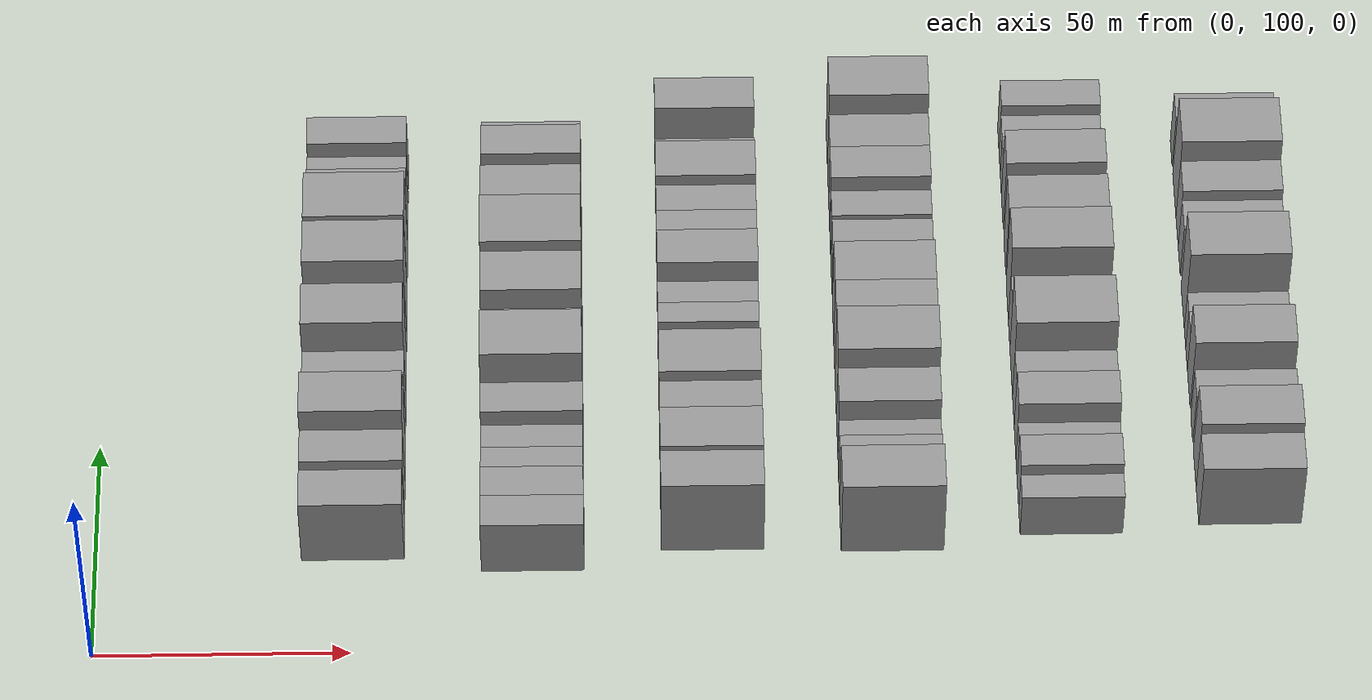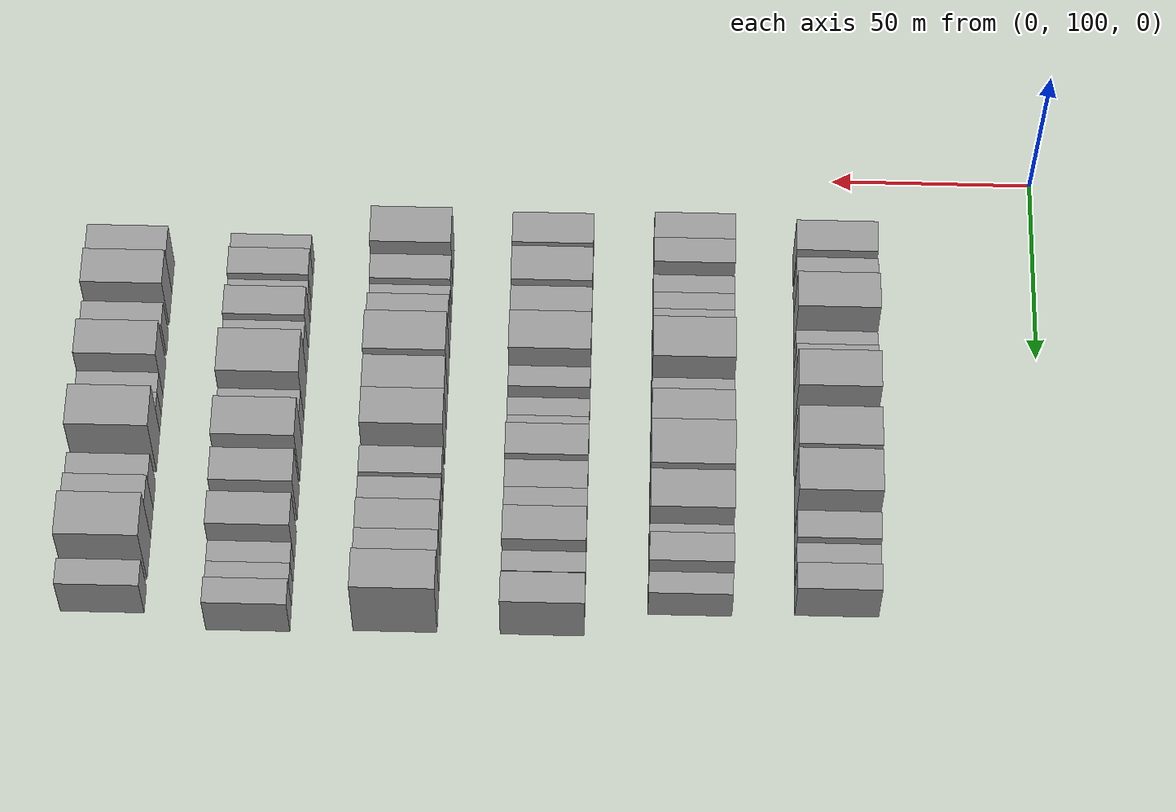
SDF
<sdf version="1.6">
 <world name="default">
  <model name="building_75">
   <static>1</static>
   <pose>50.0000 126.4468 0 0.000000 0.000000 0.000000</pose>
   <link name="link">
    <pose>0 0 9.00 0 0 0</pose>
    <collision name="collision"><geometry><box><size>20.0000 8.5566 18.0000</size></box></geometry></collision>
    <visual name="visual">
     <cast_shadows>0</cast_shadows>
     <geometry><box><size>20.0000 8.5566 18.0000</size></box></geometry>
     <material>
      <script>
       <uri>model://grey_wall/materials/scripts</uri>
       <uri>model://grey_wall/materials/textures</uri>
       <name>vrc/grey_wall</name>
      </script>
     </material>
    </visual>
   </link>
  </model>
  <model name="building_76">
   <static>1</static>
   <pose>50.0000 136.5192 0 0.000000 0.000000 0.000000</pose>
   <link name="link">
    <pose>0 0 9.00 0 0 0</pose>
    <collision name="collision"><geometry><box><size>20.0000 7.5880 18.0000</size></box></geometry></collision>
    <visual name="visual">
     <cast_shadows>0</cast_shadows>
     <geometry><box><size>20.0000 7.5880 18.0000</size></box></geometry>
     <material>
      <script>
       <uri>model://grey_wall/materials/scripts</uri>
       <uri>model://grey_wall/materials/textures</uri>
       <name>vrc/grey_wall</name>
      </script>
     </material>
    </visual>
   </link>
  </model>
  <model name="building_77">
   <static>1</static>
   <pose>50.0000 145.1539 0 0.000000 0.000000 0.000000</pose>
   <link name="link">
    <pose>0 0 12.00 0 0 0</pose>
    <collision name="collision"><geometry><box><size>20.0000 9.6815 24.0000</size></box></geometry></collision>
    <visual name="visual">
     <cast_shadows>0</cast_shadows>
     <geometry><box><size>20.0000 9.6815 24.0000</size></box></geometry>
     <material>
      <script>
       <uri>model://grey_wall/materials/scripts</uri>
       <uri>model://grey_wall/materials/textures</uri>
       <name>vrc/grey_wall</name>
      </script>
     </material>
    </visual>
   </link>
  </model>
  <model name="building_78">
   <static>1</static>
   <pose>50.0000 152.7154 0 0.000000 0.000000 0.000000</pose>
   <link name="link">
    <pose>0 0 6.00 0 0 0</pose>
    <collision name="collision"><geometry><box><size>20.0000 5.4415 12.0000</size></box></geometry></collision>
    <visual name="visual">
     <cast_shadows>0</cast_shadows>
     <geometry><box><size>20.0000 5.4415 12.0000</size></box></geometry>
     <material>
      <script>
       <uri>model://grey_wall/materials/scripts</uri>
       <uri>model://grey_wall/materials/textures</uri>
       <name>vrc/grey_wall</name>
      </script>
     </material>
    </visual>
   </link>
  </model>
  <model name="building_79">
   <static>1</static>
   <pose>50.0000 158.6669 0 0.000000 0.000000 0.000000</pose>
   <link name="link">
    <pose>0 0 7.50 0 0 0</pose>
    <collision name="collision"><geometry><box><size>20.0000 6.4617 15.0000</size></box></geometry></collision>
    <visual name="visual">
     <cast_shadows>0</cast_shadows>
     <geometry><box><size>20.0000 6.4617 15.0000</size></box></geometry>
     <material>
      <script>
       <uri>model://grey_wall/materials/scripts</uri>
       <uri>model://grey_wall/materials/textures</uri>
       <name>vrc/grey_wall</name>
      </script>
     </material>
    </visual>
   </link>
  </model>
  <model name="building_80">
   <static>1</static>
   <pose>50.0000 166.8273 0 0.000000 0.000000 0.000000</pose>
   <link name="link">
    <pose>0 0 12.00 0 0 0</pose>
    <collision name="collision"><geometry><box><size>20.0000 9.8591 24.0000</size></box></geometry></collision>
    <visual name="visual">
     <cast_shadows>0</cast_shadows>
     <geometry><box><size>20.0000 9.8591 24.0000</size></box></geometry>
     <material>
      <script>
       <uri>model://grey_wall/materials/scripts</uri>
       <uri>model://grey_wall/materials/textures</uri>
       <name>vrc/grey_wall</name>
      </script>
     </material>
    </visual>
   </link>
  </model>
  <model name="building_81">
   <static>1</static>
   <pose>50.0000 174.5070 0 0.000000 0.000000 0.000000</pose>
   <link name="link">
    <pose>0 0 6.00 0 0 0</pose>
    <collision name="collision"><geometry><box><size>20.0000 5.5002 12.0000</size></box></geometry></collision>
    <visual name="visual">
     <cast_shadows>0</cast_shadows>
     <geometry><box><size>20.0000 5.5002 12.0000</size></box></geometry>
     <material>
      <script>
       <uri>model://grey_wall/materials/scripts</uri>
       <uri>model://grey_wall/materials/textures</uri>
       <name>vrc/grey_wall</name>
      </script>
     </material>
    </visual>
   </link>
  </model>
  <model name="building_82">
   <static>1</static>
   <pose>50.0000 182.4204 0 0.000000 0.000000 0.000000</pose>
   <link name="link">
    <pose>0 0 12.00 0 0 0</pose>
    <collision name="collision"><geometry><box><size>20.0000 10.3265 24.0000</size></box></geometry></collision>
    <visual name="visual">
     <cast_shadows>0</cast_shadows>
     <geometry><box><size>20.0000 10.3265 24.0000</size></box></geometry>
     <material>
      <script>
       <uri>model://grey_wall/materials/scripts</uri>
       <uri>model://grey_wall/materials/textures</uri>
       <name>vrc/grey_wall</name>
      </script>
     </material>
    </visual>
   </link>
  </model>
  <model name="building_83">
   <static>1</static>
   <pose>50.0000 194.1700 0 0.000000 0.000000 0.000000</pose>
   <link name="link">
    <pose>0 0 12.00 0 0 0</pose>
    <collision name="collision"><geometry><box><size>20.0000 11.1727 24.0000</size></box></geometry></collision>
    <visual name="visual">
     <cast_shadows>0</cast_shadows>
     <geometry><box><size>20.0000 11.1727 24.0000</size></box></geometry>
     <material>
      <script>
       <uri>model://grey_wall/materials/scripts</uri>
       <uri>model://grey_wall/materials/textures</uri>
       <name>vrc/grey_wall</name>
      </script>
     </material>
    </visual>
   </link>
  </model>
  <model name="building_84">
   <static>1</static>
   <pose>50.0000 204.3230 0 0.000000 0.000000 0.000000</pose>
   <link name="link">
    <pose>0 0 7.50 0 0 0</pose>
    <collision name="collision"><geometry><box><size>20.0000 7.1332 15.0000</size></box></geometry></collision>
    <visual name="visual">
     <cast_shadows>0</cast_shadows>
     <geometry><box><size>20.0000 7.1332 15.0000</size></box></geometry>
     <material>
      <script>
       <uri>model://grey_wall/materials/scripts</uri>
       <uri>model://grey_wall/materials/textures</uri>
       <name>vrc/grey_wall</name>
      </script>
     </material>
    </visual>
   </link>
  </model>
  <model name="building_85">
   <static>1</static>
   <pose>50.0000 210.6732 0 0.000000 0.000000 0.000000</pose>
   <link name="link">
    <pose>0 0 6.00 0 0 0</pose>
    <collision name="collision"><geometry><box><size>20.0000 5.5672 12.0000</size></box></geometry></collision>
    <visual name="visual">
     <cast_shadows>0</cast_shadows>
     <geometry><box><size>20.0000 5.5672 12.0000</size></box></geometry>
     <material>
      <script>
       <uri>model://grey_wall/materials/scripts</uri>
       <uri>model://grey_wall/materials/textures</uri>
       <name>vrc/grey_wall</name>
      </script>
     </material>
    </visual>
   </link>
  </model>
  <model name="building_86">
   <static>1</static>
   <pose>50.0000 217.8794 0 0.000000 0.000000 0.000000</pose>
   <link name="link">
    <pose>0 0 7.50 0 0 0</pose>
    <collision name="collision"><geometry><box><size>20.0000 6.8454 15.0000</size></box></geometry></collision>
    <visual name="visual">
     <cast_shadows>0</cast_shadows>
     <geometry><box><size>20.0000 6.8454 15.0000</size></box></geometry>
     <material>
      <script>
       <uri>model://grey_wall/materials/scripts</uri>
       <uri>model://grey_wall/materials/textures</uri>
       <name>vrc/grey_wall</name>
      </script>
     </material>
    </visual>
   </link>
  </model>
  <model name="building_195">
   <static>1</static>
   <pose>85.0000 122.6215 0 0.000000 0.000000 0.000000</pose>
   <link name="link">
    <pose>0 0 7.50 0 0 0</pose>
    <collision name="collision"><geometry><box><size>20.0000 7.2473 15.0000</size></box></geometry></collision>
    <visual name="visual">
     <cast_shadows>0</cast_shadows>
     <geometry><box><size>20.0000 7.2473 15.0000</size></box></geometry>
     <material>
      <script>
       <uri>model://grey_wall/materials/scripts</uri>
       <uri>model://grey_wall/materials/textures</uri>
       <name>vrc/grey_wall</name>
      </script>
     </material>
    </visual>
   </link>
  </model>
  <model name="building_196">
   <static>1</static>
   <pose>85.0000 129.6965 0 0.000000 0.000000 0.000000</pose>
   <link name="link">
    <pose>0 0 7.50 0 0 0</pose>
    <collision name="collision"><geometry><box><size>20.0000 6.9028 15.0000</size></box></geometry></collision>
    <visual name="visual">
     <cast_shadows>0</cast_shadows>
     <geometry><box><size>20.0000 6.9028 15.0000</size></box></geometry>
     <material>
      <script>
       <uri>model://grey_wall/materials/scripts</uri>
       <uri>model://grey_wall/materials/textures</uri>
       <name>vrc/grey_wall</name>
      </script>
     </material>
    </visual>
   </link>
  </model>
  <model name="building_197">
   <static>1</static>
   <pose>85.0000 137.6259 0 0.000000 0.000000 0.000000</pose>
   <link name="link">
    <pose>0 0 6.00 0 0 0</pose>
    <collision name="collision"><geometry><box><size>20.0000 4.9561 12.0000</size></box></geometry></collision>
    <visual name="visual">
     <cast_shadows>0</cast_shadows>
     <geometry><box><size>20.0000 4.9561 12.0000</size></box></geometry>
     <material>
      <script>
       <uri>model://grey_wall/materials/scripts</uri>
       <uri>model://grey_wall/materials/textures</uri>
       <name>vrc/grey_wall</name>
      </script>
     </material>
    </visual>
   </link>
  </model>
  <model name="building_198">
   <static>1</static>
   <pose>85.0000 142.8022 0 0.000000 0.000000 0.000000</pose>
   <link name="link">
    <pose>0 0 6.00 0 0 0</pose>
    <collision name="collision"><geometry><box><size>20.0000 5.3965 12.0000</size></box></geometry></collision>
    <visual name="visual">
     <cast_shadows>0</cast_shadows>
     <geometry><box><size>20.0000 5.3965 12.0000</size></box></geometry>
     <material>
      <script>
       <uri>model://grey_wall/materials/scripts</uri>
       <uri>model://grey_wall/materials/textures</uri>
       <name>vrc/grey_wall</name>
      </script>
     </material>
    </visual>
   </link>
  </model>
  <model name="building_199">
   <static>1</static>
   <pose>85.0000 150.0899 0 0.000000 0.000000 0.000000</pose>
   <link name="link">
    <pose>0 0 7.50 0 0 0</pose>
    <collision name="collision"><geometry><box><size>20.0000 7.1789 15.0000</size></box></geometry></collision>
    <visual name="visual">
     <cast_shadows>0</cast_shadows>
     <geometry><box><size>20.0000 7.1789 15.0000</size></box></geometry>
     <material>
      <script>
       <uri>model://grey_wall/materials/scripts</uri>
       <uri>model://grey_wall/materials/textures</uri>
       <name>vrc/grey_wall</name>
      </script>
     </material>
    </visual>
   </link>
  </model>
  <model name="building_200">
   <static>1</static>
   <pose>85.0000 159.1808 0 0.000000 0.000000 0.000000</pose>
   <link name="link">
    <pose>0 0 12.00 0 0 0</pose>
    <collision name="collision"><geometry><box><size>20.0000 11.0028 24.0000</size></box></geometry></collision>
    <visual name="visual">
     <cast_shadows>0</cast_shadows>
     <geometry><box><size>20.0000 11.0028 24.0000</size></box></geometry>
     <material>
      <script>
       <uri>model://grey_wall/materials/scripts</uri>
       <uri>model://grey_wall/materials/textures</uri>
       <name>vrc/grey_wall</name>
      </script>
     </material>
    </visual>
   </link>
  </model>
  <model name="building_201">
   <static>1</static>
   <pose>85.0000 168.7923 0 0.000000 0.000000 0.000000</pose>
   <link name="link">
    <pose>0 0 7.50 0 0 0</pose>
    <collision name="collision"><geometry><box><size>20.0000 6.2203 15.0000</size></box></geometry></collision>
    <visual name="visual">
     <cast_shadows>0</cast_shadows>
     <geometry><box><size>20.0000 6.2203 15.0000</size></box></geometry>
     <material>
      <script>
       <uri>model://grey_wall/materials/scripts</uri>
       <uri>model://grey_wall/materials/textures</uri>
       <name>vrc/grey_wall</name>
      </script>
     </material>
    </visual>
   </link>
  </model>
  <model name="building_202">
   <static>1</static>
   <pose>85.0000 176.7873 0 0.000000 0.000000 0.000000</pose>
   <link name="link">
    <pose>0 0 10.50 0 0 0</pose>
    <collision name="collision"><geometry><box><size>20.0000 9.7696 21.0000</size></box></geometry></collision>
    <visual name="visual">
     <cast_shadows>0</cast_shadows>
     <geometry><box><size>20.0000 9.7696 21.0000</size></box></geometry>
     <material>
      <script>
       <uri>model://grey_wall/materials/scripts</uri>
       <uri>model://grey_wall/materials/textures</uri>
       <name>vrc/grey_wall</name>
      </script>
     </material>
    </visual>
   </link>
  </model>
  <model name="building_203">
   <static>1</static>
   <pose>85.0000 187.6029 0 0.000000 0.000000 0.000000</pose>
   <link name="link">
    <pose>0 0 12.00 0 0 0</pose>
    <collision name="collision"><geometry><box><size>20.0000 11.8616 24.0000</size></box></geometry></collision>
    <visual name="visual">
     <cast_shadows>0</cast_shadows>
     <geometry><box><size>20.0000 11.8616 24.0000</size></box></geometry>
     <material>
      <script>
       <uri>model://grey_wall/materials/scripts</uri>
       <uri>model://grey_wall/materials/textures</uri>
       <name>vrc/grey_wall</name>
      </script>
     </material>
    </visual>
   </link>
  </model>
  <model name="building_204">
   <static>1</static>
   <pose>85.0000 198.5541 0 0.000000 0.000000 0.000000</pose>
   <link name="link">
    <pose>0 0 10.50 0 0 0</pose>
    <collision name="collision"><geometry><box><size>20.0000 10.0409 21.0000</size></box></geometry></collision>
    <visual name="visual">
     <cast_shadows>0</cast_shadows>
     <geometry><box><size>20.0000 10.0409 21.0000</size></box></geometry>
     <material>
      <script>
       <uri>model://grey_wall/materials/scripts</uri>
       <uri>model://grey_wall/materials/textures</uri>
       <name>vrc/grey_wall</name>
      </script>
     </material>
    </visual>
   </link>
  </model>
  <model name="building_205">
   <static>1</static>
   <pose>85.0000 206.1847 0 0.000000 0.000000 0.000000</pose>
   <link name="link">
    <pose>0 0 6.00 0 0 0</pose>
    <collision name="collision"><geometry><box><size>20.0000 5.2202 12.0000</size></box></geometry></collision>
    <visual name="visual">
     <cast_shadows>0</cast_shadows>
     <geometry><box><size>20.0000 5.2202 12.0000</size></box></geometry>
     <material>
      <script>
       <uri>model://grey_wall/materials/scripts</uri>
       <uri>model://grey_wall/materials/textures</uri>
       <name>vrc/grey_wall</name>
      </script>
     </material>
    </visual>
   </link>
  </model>
  <model name="building_206">
   <static>1</static>
   <pose>85.0000 212.5248 0 0.000000 0.000000 0.000000</pose>
   <link name="link">
    <pose>0 0 9.00 0 0 0</pose>
    <collision name="collision"><geometry><box><size>20.0000 7.4601 18.0000</size></box></geometry></collision>
    <visual name="visual">
     <cast_shadows>0</cast_shadows>
     <geometry><box><size>20.0000 7.4601 18.0000</size></box></geometry>
     <material>
      <script>
       <uri>model://grey_wall/materials/scripts</uri>
       <uri>model://grey_wall/materials/textures</uri>
       <name>vrc/grey_wall</name>
      </script>
     </material>
    </visual>
   </link>
  </model>
  <model name="building_207">
   <static>1</static>
   <pose>85.0000 219.0925 0 0.000000 0.000000 0.000000</pose>
   <link name="link">
    <pose>0 0 6.00 0 0 0</pose>
    <collision name="collision"><geometry><box><size>20.0000 5.6752 12.0000</size></box></geometry></collision>
    <visual name="visual">
     <cast_shadows>0</cast_shadows>
     <geometry><box><size>20.0000 5.6752 12.0000</size></box></geometry>
     <material>
      <script>
       <uri>model://grey_wall/materials/scripts</uri>
       <uri>model://grey_wall/materials/textures</uri>
       <name>vrc/grey_wall</name>
      </script>
     </material>
    </visual>
   </link>
  </model>
  <model name="building_328">
   <static>1</static>
   <pose>120.0000 127.7406 0 0.000000 0.000000 0.000000</pose>
   <link name="link">
    <pose>0 0 10.50 0 0 0</pose>
    <collision name="collision"><geometry><box><size>20.0000 8.5508 21.0000</size></box></geometry></collision>
    <visual name="visual">
     <cast_shadows>0</cast_shadows>
     <geometry><box><size>20.0000 8.5508 21.0000</size></box></geometry>
     <material>
      <script>
       <uri>model://grey_wall/materials/scripts</uri>
       <uri>model://grey_wall/materials/textures</uri>
       <name>vrc/grey_wall</name>
      </script>
     </material>
    </visual>
   </link>
  </model>
  <model name="building_329">
   <static>1</static>
   <pose>120.0000 137.7846 0 0.000000 0.000000 0.000000</pose>
   <link name="link">
    <pose>0 0 10.50 0 0 0</pose>
    <collision name="collision"><geometry><box><size>20.0000 9.5372 21.0000</size></box></geometry></collision>
    <visual name="visual">
     <cast_shadows>0</cast_shadows>
     <geometry><box><size>20.0000 9.5372 21.0000</size></box></geometry>
     <material>
      <script>
       <uri>model://grey_wall/materials/scripts</uri>
       <uri>model://grey_wall/materials/textures</uri>
       <name>vrc/grey_wall</name>
      </script>
     </material>
    </visual>
   </link>
  </model>
  <model name="building_330">
   <static>1</static>
   <pose>120.0000 146.8764 0 0.000000 0.000000 0.000000</pose>
   <link name="link">
    <pose>0 0 9.00 0 0 0</pose>
    <collision name="collision"><geometry><box><size>20.0000 8.6464 18.0000</size></box></geometry></collision>
    <visual name="visual">
     <cast_shadows>0</cast_shadows>
     <geometry><box><size>20.0000 8.6464 18.0000</size></box></geometry>
     <material>
      <script>
       <uri>model://grey_wall/materials/scripts</uri>
       <uri>model://grey_wall/materials/textures</uri>
       <name>vrc/grey_wall</name>
      </script>
     </material>
    </visual>
   </link>
  </model>
  <model name="building_331">
   <static>1</static>
   <pose>120.0000 156.4136 0 0.000000 0.000000 0.000000</pose>
   <link name="link">
    <pose>0 0 10.50 0 0 0</pose>
    <collision name="collision"><geometry><box><size>20.0000 10.4281 21.0000</size></box></geometry></collision>
    <visual name="visual">
     <cast_shadows>0</cast_shadows>
     <geometry><box><size>20.0000 10.4281 21.0000</size></box></geometry>
     <material>
      <script>
       <uri>model://grey_wall/materials/scripts</uri>
       <uri>model://grey_wall/materials/textures</uri>
       <name>vrc/grey_wall</name>
      </script>
     </material>
    </visual>
   </link>
  </model>
  <model name="building_332">
   <static>1</static>
   <pose>120.0000 164.4815 0 0.000000 0.000000 0.000000</pose>
   <link name="link">
    <pose>0 0 6.00 0 0 0</pose>
    <collision name="collision"><geometry><box><size>20.0000 5.7077 12.0000</size></box></geometry></collision>
    <visual name="visual">
     <cast_shadows>0</cast_shadows>
     <geometry><box><size>20.0000 5.7077 12.0000</size></box></geometry>
     <material>
      <script>
       <uri>model://grey_wall/materials/scripts</uri>
       <uri>model://grey_wall/materials/textures</uri>
       <name>vrc/grey_wall</name>
      </script>
     </material>
    </visual>
   </link>
  </model>
  <model name="building_333">
   <static>1</static>
   <pose>120.0000 172.8154 0 0.000000 0.000000 0.000000</pose>
   <link name="link">
    <pose>0 0 6.00 0 0 0</pose>
    <collision name="collision"><geometry><box><size>20.0000 4.9602 12.0000</size></box></geometry></collision>
    <visual name="visual">
     <cast_shadows>0</cast_shadows>
     <geometry><box><size>20.0000 4.9602 12.0000</size></box></geometry>
     <material>
      <script>
       <uri>model://grey_wall/materials/scripts</uri>
       <uri>model://grey_wall/materials/textures</uri>
       <name>vrc/grey_wall</name>
      </script>
     </material>
    </visual>
   </link>
  </model>
  <model name="building_334">
   <static>1</static>
   <pose>120.0000 177.9159 0 0.000000 0.000000 0.000000</pose>
   <link name="link">
    <pose>0 0 6.00 0 0 0</pose>
    <collision name="collision"><geometry><box><size>20.0000 5.2408 12.0000</size></box></geometry></collision>
    <visual name="visual">
     <cast_shadows>0</cast_shadows>
     <geometry><box><size>20.0000 5.2408 12.0000</size></box></geometry>
     <material>
      <script>
       <uri>model://grey_wall/materials/scripts</uri>
       <uri>model://grey_wall/materials/textures</uri>
       <name>vrc/grey_wall</name>
      </script>
     </material>
    </visual>
   </link>
  </model>
  <model name="building_335">
   <static>1</static>
   <pose>120.0000 184.7091 0 0.000000 0.000000 0.000000</pose>
   <link name="link">
    <pose>0 0 9.00 0 0 0</pose>
    <collision name="collision"><geometry><box><size>20.0000 8.3456 18.0000</size></box></geometry></collision>
    <visual name="visual">
     <cast_shadows>0</cast_shadows>
     <geometry><box><size>20.0000 8.3456 18.0000</size></box></geometry>
     <material>
      <script>
       <uri>model://grey_wall/materials/scripts</uri>
       <uri>model://grey_wall/materials/textures</uri>
       <name>vrc/grey_wall</name>
      </script>
     </material>
    </visual>
   </link>
  </model>
  <model name="building_336">
   <static>1</static>
   <pose>120.0000 192.5555 0 0.000000 0.000000 0.000000</pose>
   <link name="link">
    <pose>0 0 7.50 0 0 0</pose>
    <collision name="collision"><geometry><box><size>20.0000 7.3470 15.0000</size></box></geometry></collision>
    <visual name="visual">
     <cast_shadows>0</cast_shadows>
     <geometry><box><size>20.0000 7.3470 15.0000</size></box></geometry>
     <material>
      <script>
       <uri>model://grey_wall/materials/scripts</uri>
       <uri>model://grey_wall/materials/textures</uri>
       <name>vrc/grey_wall</name>
      </script>
     </material>
    </visual>
   </link>
  </model>
  <model name="building_337">
   <static>1</static>
   <pose>120.0000 199.4302 0 0.000000 0.000000 0.000000</pose>
   <link name="link">
    <pose>0 0 7.50 0 0 0</pose>
    <collision name="collision"><geometry><box><size>20.0000 6.4024 15.0000</size></box></geometry></collision>
    <visual name="visual">
     <cast_shadows>0</cast_shadows>
     <geometry><box><size>20.0000 6.4024 15.0000</size></box></geometry>
     <material>
      <script>
       <uri>model://grey_wall/materials/scripts</uri>
       <uri>model://grey_wall/materials/textures</uri>
       <name>vrc/grey_wall</name>
      </script>
     </material>
    </visual>
   </link>
  </model>
  <model name="building_338">
   <static>1</static>
   <pose>120.0000 207.1223 0 0.000000 0.000000 0.000000</pose>
   <link name="link">
    <pose>0 0 9.00 0 0 0</pose>
    <collision name="collision"><geometry><box><size>20.0000 8.9820 18.0000</size></box></geometry></collision>
    <visual name="visual">
     <cast_shadows>0</cast_shadows>
     <geometry><box><size>20.0000 8.9820 18.0000</size></box></geometry>
     <material>
      <script>
       <uri>model://grey_wall/materials/scripts</uri>
       <uri>model://grey_wall/materials/textures</uri>
       <name>vrc/grey_wall</name>
      </script>
     </material>
    </visual>
   </link>
  </model>
  <model name="building_339">
   <static>1</static>
   <pose>120.0000 214.3320 0 0.000000 0.000000 0.000000</pose>
   <link name="link">
    <pose>0 0 6.00 0 0 0</pose>
    <collision name="collision"><geometry><box><size>20.0000 5.4373 12.0000</size></box></geometry></collision>
    <visual name="visual">
     <cast_shadows>0</cast_shadows>
     <geometry><box><size>20.0000 5.4373 12.0000</size></box></geometry>
     <material>
      <script>
       <uri>model://grey_wall/materials/scripts</uri>
       <uri>model://grey_wall/materials/textures</uri>
       <name>vrc/grey_wall</name>
      </script>
     </material>
    </visual>
   </link>
  </model>
  <model name="building_340">
   <static>1</static>
   <pose>120.0000 224.0153 0 0.000000 0.000000 0.000000</pose>
   <link name="link">
    <pose>0 0 9.00 0 0 0</pose>
    <collision name="collision"><geometry><box><size>20.0000 7.9292 18.0000</size></box></geometry></collision>
    <visual name="visual">
     <cast_shadows>0</cast_shadows>
     <geometry><box><size>20.0000 7.9292 18.0000</size></box></geometry>
     <material>
      <script>
       <uri>model://grey_wall/materials/scripts</uri>
       <uri>model://grey_wall/materials/textures</uri>
       <name>vrc/grey_wall</name>
      </script>
     </material>
    </visual>
   </link>
  </model>
  <model name="building_445">
   <static>1</static>
   <pose>155.0000 127.6790 0 0.000000 0.000000 0.000000</pose>
   <link name="link">
    <pose>0 0 10.50 0 0 0</pose>
    <collision name="collision"><geometry><box><size>20.0000 10.0228 21.0000</size></box></geometry></collision>
    <visual name="visual">
     <cast_shadows>0</cast_shadows>
     <geometry><box><size>20.0000 10.0228 21.0000</size></box></geometry>
     <material>
      <script>
       <uri>model://grey_wall/materials/scripts</uri>
       <uri>model://grey_wall/materials/textures</uri>
       <name>vrc/grey_wall</name>
      </script>
     </material>
    </visual>
   </link>
  </model>
  <model name="building_446">
   <static>1</static>
   <pose>155.0000 136.1555 0 0.000000 0.000000 0.000000</pose>
   <link name="link">
    <pose>0 0 7.50 0 0 0</pose>
    <collision name="collision"><geometry><box><size>20.0000 6.9302 15.0000</size></box></geometry></collision>
    <visual name="visual">
     <cast_shadows>0</cast_shadows>
     <geometry><box><size>20.0000 6.9302 15.0000</size></box></geometry>
     <material>
      <script>
       <uri>model://grey_wall/materials/scripts</uri>
       <uri>model://grey_wall/materials/textures</uri>
       <name>vrc/grey_wall</name>
      </script>
     </material>
    </visual>
   </link>
  </model>
  <model name="building_447">
   <static>1</static>
   <pose>155.0000 142.6181 0 0.000000 0.000000 0.000000</pose>
   <link name="link">
    <pose>0 0 6.00 0 0 0</pose>
    <collision name="collision"><geometry><box><size>20.0000 5.9949 12.0000</size></box></geometry></collision>
    <visual name="visual">
     <cast_shadows>0</cast_shadows>
     <geometry><box><size>20.0000 5.9949 12.0000</size></box></geometry>
     <material>
      <script>
       <uri>model://grey_wall/materials/scripts</uri>
       <uri>model://grey_wall/materials/textures</uri>
       <name>vrc/grey_wall</name>
      </script>
     </material>
    </visual>
   </link>
  </model>
  <model name="building_448">
   <static>1</static>
   <pose>155.0000 149.7255 0 0.000000 0.000000 0.000000</pose>
   <link name="link">
    <pose>0 0 9.00 0 0 0</pose>
    <collision name="collision"><geometry><box><size>20.0000 8.2200 18.0000</size></box></geometry></collision>
    <visual name="visual">
     <cast_shadows>0</cast_shadows>
     <geometry><box><size>20.0000 8.2200 18.0000</size></box></geometry>
     <material>
      <script>
       <uri>model://grey_wall/materials/scripts</uri>
       <uri>model://grey_wall/materials/textures</uri>
       <name>vrc/grey_wall</name>
      </script>
     </material>
    </visual>
   </link>
  </model>
  <model name="building_449">
   <static>1</static>
   <pose>155.0000 159.1328 0 0.000000 0.000000 0.000000</pose>
   <link name="link">
    <pose>0 0 12.00 0 0 0</pose>
    <collision name="collision"><geometry><box><size>20.0000 10.5945 24.0000</size></box></geometry></collision>
    <visual name="visual">
     <cast_shadows>0</cast_shadows>
     <geometry><box><size>20.0000 10.5945 24.0000</size></box></geometry>
     <material>
      <script>
       <uri>model://grey_wall/materials/scripts</uri>
       <uri>model://grey_wall/materials/textures</uri>
       <name>vrc/grey_wall</name>
      </script>
     </material>
    </visual>
   </link>
  </model>
  <model name="building_450">
   <static>1</static>
   <pose>155.0000 168.8812 0 0.000000 0.000000 0.000000</pose>
   <link name="link">
    <pose>0 0 10.50 0 0 0</pose>
    <collision name="collision"><geometry><box><size>20.0000 8.9023 21.0000</size></box></geometry></collision>
    <visual name="visual">
     <cast_shadows>0</cast_shadows>
     <geometry><box><size>20.0000 8.9023 21.0000</size></box></geometry>
     <material>
      <script>
       <uri>model://grey_wall/materials/scripts</uri>
       <uri>model://grey_wall/materials/textures</uri>
       <name>vrc/grey_wall</name>
      </script>
     </material>
    </visual>
   </link>
  </model>
  <model name="building_451">
   <static>1</static>
   <pose>155.0000 178.1895 0 0.000000 0.000000 0.000000</pose>
   <link name="link">
    <pose>0 0 10.50 0 0 0</pose>
    <collision name="collision"><geometry><box><size>20.0000 9.7144 21.0000</size></box></geometry></collision>
    <visual name="visual">
     <cast_shadows>0</cast_shadows>
     <geometry><box><size>20.0000 9.7144 21.0000</size></box></geometry>
     <material>
      <script>
       <uri>model://grey_wall/materials/scripts</uri>
       <uri>model://grey_wall/materials/textures</uri>
       <name>vrc/grey_wall</name>
      </script>
     </material>
    </visual>
   </link>
  </model>
  <model name="building_452">
   <static>1</static>
   <pose>155.0000 189.6638 0 0.000000 0.000000 0.000000</pose>
   <link name="link">
    <pose>0 0 7.50 0 0 0</pose>
    <collision name="collision"><geometry><box><size>20.0000 7.2342 15.0000</size></box></geometry></collision>
    <visual name="visual">
     <cast_shadows>0</cast_shadows>
     <geometry><box><size>20.0000 7.2342 15.0000</size></box></geometry>
     <material>
      <script>
       <uri>model://grey_wall/materials/scripts</uri>
       <uri>model://grey_wall/materials/textures</uri>
       <name>vrc/grey_wall</name>
      </script>
     </material>
    </visual>
   </link>
  </model>
  <model name="building_453">
   <static>1</static>
   <pose>155.0000 197.4546 0 0.000000 0.000000 0.000000</pose>
   <link name="link">
    <pose>0 0 7.50 0 0 0</pose>
    <collision name="collision"><geometry><box><size>20.0000 6.3474 15.0000</size></box></geometry></collision>
    <visual name="visual">
     <cast_shadows>0</cast_shadows>
     <geometry><box><size>20.0000 6.3474 15.0000</size></box></geometry>
     <material>
      <script>
       <uri>model://grey_wall/materials/scripts</uri>
       <uri>model://grey_wall/materials/textures</uri>
       <name>vrc/grey_wall</name>
      </script>
     </material>
    </visual>
   </link>
  </model>
  <model name="building_454">
   <static>1</static>
   <pose>155.0000 205.6156 0 0.000000 0.000000 0.000000</pose>
   <link name="link">
    <pose>0 0 9.00 0 0 0</pose>
    <collision name="collision"><geometry><box><size>20.0000 7.9745 18.0000</size></box></geometry></collision>
    <visual name="visual">
     <cast_shadows>0</cast_shadows>
     <geometry><box><size>20.0000 7.9745 18.0000</size></box></geometry>
     <material>
      <script>
       <uri>model://grey_wall/materials/scripts</uri>
       <uri>model://grey_wall/materials/textures</uri>
       <name>vrc/grey_wall</name>
      </script>
     </material>
    </visual>
   </link>
  </model>
  <model name="building_455">
   <static>1</static>
   <pose>155.0000 213.7483 0 0.000000 0.000000 0.000000</pose>
   <link name="link">
    <pose>0 0 9.00 0 0 0</pose>
    <collision name="collision"><geometry><box><size>20.0000 8.2910 18.0000</size></box></geometry></collision>
    <visual name="visual">
     <cast_shadows>0</cast_shadows>
     <geometry><box><size>20.0000 8.2910 18.0000</size></box></geometry>
     <material>
      <script>
       <uri>model://grey_wall/materials/scripts</uri>
       <uri>model://grey_wall/materials/textures</uri>
       <name>vrc/grey_wall</name>
      </script>
     </material>
    </visual>
   </link>
  </model>
  <model name="building_456">
   <static>1</static>
   <pose>155.0000 222.9346 0 0.000000 0.000000 0.000000</pose>
   <link name="link">
    <pose>0 0 12.00 0 0 0</pose>
    <collision name="collision"><geometry><box><size>20.0000 10.0817 24.0000</size></box></geometry></collision>
    <visual name="visual">
     <cast_shadows>0</cast_shadows>
     <geometry><box><size>20.0000 10.0817 24.0000</size></box></geometry>
     <material>
      <script>
       <uri>model://grey_wall/materials/scripts</uri>
       <uri>model://grey_wall/materials/textures</uri>
       <name>vrc/grey_wall</name>
      </script>
     </material>
    </visual>
   </link>
  </model>
  <model name="building_571">
   <static>1</static>
   <pose>190.0000 128.9058 0 0.000000 0.000000 0.000000</pose>
   <link name="link">
    <pose>0 0 6.00 0 0 0</pose>
    <collision name="collision"><geometry><box><size>20.0000 5.6125 12.0000</size></box></geometry></collision>
    <visual name="visual">
     <cast_shadows>0</cast_shadows>
     <geometry><box><size>20.0000 5.6125 12.0000</size></box></geometry>
     <material>
      <script>
       <uri>model://grey_wall/materials/scripts</uri>
       <uri>model://grey_wall/materials/textures</uri>
       <name>vrc/grey_wall</name>
      </script>
     </material>
    </visual>
   </link>
  </model>
  <model name="building_572">
   <static>1</static>
   <pose>190.0000 135.4426 0 0.000000 0.000000 0.000000</pose>
   <link name="link">
    <pose>0 0 7.50 0 0 0</pose>
    <collision name="collision"><geometry><box><size>20.0000 7.4611 15.0000</size></box></geometry></collision>
    <visual name="visual">
     <cast_shadows>0</cast_shadows>
     <geometry><box><size>20.0000 7.4611 15.0000</size></box></geometry>
     <material>
      <script>
       <uri>model://grey_wall/materials/scripts</uri>
       <uri>model://grey_wall/materials/textures</uri>
       <name>vrc/grey_wall</name>
      </script>
     </material>
    </visual>
   </link>
  </model>
  <model name="building_573">
   <static>1</static>
   <pose>190.0000 141.7530 0 0.000000 0.000000 0.000000</pose>
   <link name="link">
    <pose>0 0 6.00 0 0 0</pose>
    <collision name="collision"><geometry><box><size>20.0000 5.1597 12.0000</size></box></geometry></collision>
    <visual name="visual">
     <cast_shadows>0</cast_shadows>
     <geometry><box><size>20.0000 5.1597 12.0000</size></box></geometry>
     <material>
      <script>
       <uri>model://grey_wall/materials/scripts</uri>
       <uri>model://grey_wall/materials/textures</uri>
       <name>vrc/grey_wall</name>
      </script>
     </material>
    </visual>
   </link>
  </model>
  <model name="building_574">
   <static>1</static>
   <pose>190.0000 148.3217 0 0.000000 0.000000 0.000000</pose>
   <link name="link">
    <pose>0 0 9.00 0 0 0</pose>
    <collision name="collision"><geometry><box><size>20.0000 7.9777 18.0000</size></box></geometry></collision>
    <visual name="visual">
     <cast_shadows>0</cast_shadows>
     <geometry><box><size>20.0000 7.9777 18.0000</size></box></geometry>
     <material>
      <script>
       <uri>model://grey_wall/materials/scripts</uri>
       <uri>model://grey_wall/materials/textures</uri>
       <name>vrc/grey_wall</name>
      </script>
     </material>
    </visual>
   </link>
  </model>
  <model name="building_575">
   <static>1</static>
   <pose>190.0000 156.0055 0 0.000000 0.000000 0.000000</pose>
   <link name="link">
    <pose>0 0 7.50 0 0 0</pose>
    <collision name="collision"><geometry><box><size>20.0000 7.3899 15.0000</size></box></geometry></collision>
    <visual name="visual">
     <cast_shadows>0</cast_shadows>
     <geometry><box><size>20.0000 7.3899 15.0000</size></box></geometry>
     <material>
      <script>
       <uri>model://grey_wall/materials/scripts</uri>
       <uri>model://grey_wall/materials/textures</uri>
       <name>vrc/grey_wall</name>
      </script>
     </material>
    </visual>
   </link>
  </model>
  <model name="building_576">
   <static>1</static>
   <pose>190.0000 165.5408 0 0.000000 0.000000 0.000000</pose>
   <link name="link">
    <pose>0 0 12.00 0 0 0</pose>
    <collision name="collision"><geometry><box><size>20.0000 11.6809 24.0000</size></box></geometry></collision>
    <visual name="visual">
     <cast_shadows>0</cast_shadows>
     <geometry><box><size>20.0000 11.6809 24.0000</size></box></geometry>
     <material>
      <script>
       <uri>model://grey_wall/materials/scripts</uri>
       <uri>model://grey_wall/materials/textures</uri>
       <name>vrc/grey_wall</name>
      </script>
     </material>
    </visual>
   </link>
  </model>
  <model name="building_577">
   <static>1</static>
   <pose>190.0000 174.8671 0 0.000000 0.000000 0.000000</pose>
   <link name="link">
    <pose>0 0 7.50 0 0 0</pose>
    <collision name="collision"><geometry><box><size>20.0000 6.9716 15.0000</size></box></geometry></collision>
    <visual name="visual">
     <cast_shadows>0</cast_shadows>
     <geometry><box><size>20.0000 6.9716 15.0000</size></box></geometry>
     <material>
      <script>
       <uri>model://grey_wall/materials/scripts</uri>
       <uri>model://grey_wall/materials/textures</uri>
       <name>vrc/grey_wall</name>
      </script>
     </material>
    </visual>
   </link>
  </model>
  <model name="building_578">
   <static>1</static>
   <pose>190.0000 183.4590 0 0.000000 0.000000 0.000000</pose>
   <link name="link">
    <pose>0 0 12.00 0 0 0</pose>
    <collision name="collision"><geometry><box><size>20.0000 10.2122 24.0000</size></box></geometry></collision>
    <visual name="visual">
     <cast_shadows>0</cast_shadows>
     <geometry><box><size>20.0000 10.2122 24.0000</size></box></geometry>
     <material>
      <script>
       <uri>model://grey_wall/materials/scripts</uri>
       <uri>model://grey_wall/materials/textures</uri>
       <name>vrc/grey_wall</name>
      </script>
     </material>
    </visual>
   </link>
  </model>
  <model name="building_579">
   <static>1</static>
   <pose>190.0000 194.9015 0 0.000000 0.000000 0.000000</pose>
   <link name="link">
    <pose>0 0 10.50 0 0 0</pose>
    <collision name="collision"><geometry><box><size>20.0000 8.6729 21.0000</size></box></geometry></collision>
    <visual name="visual">
     <cast_shadows>0</cast_shadows>
     <geometry><box><size>20.0000 8.6729 21.0000</size></box></geometry>
     <material>
      <script>
       <uri>model://grey_wall/materials/scripts</uri>
       <uri>model://grey_wall/materials/textures</uri>
       <name>vrc/grey_wall</name>
      </script>
     </material>
    </visual>
   </link>
  </model>
  <model name="building_580">
   <static>1</static>
   <pose>190.0000 206.5405 0 0.000000 0.000000 0.000000</pose>
   <link name="link">
    <pose>0 0 10.50 0 0 0</pose>
    <collision name="collision"><geometry><box><size>20.0000 8.6051 21.0000</size></box></geometry></collision>
    <visual name="visual">
     <cast_shadows>0</cast_shadows>
     <geometry><box><size>20.0000 8.6051 21.0000</size></box></geometry>
     <material>
      <script>
       <uri>model://grey_wall/materials/scripts</uri>
       <uri>model://grey_wall/materials/textures</uri>
       <name>vrc/grey_wall</name>
      </script>
     </material>
    </visual>
   </link>
  </model>
  <model name="building_581">
   <static>1</static>
   <pose>190.0000 213.5947 0 0.000000 0.000000 0.000000</pose>
   <link name="link">
    <pose>0 0 6.00 0 0 0</pose>
    <collision name="collision"><geometry><box><size>20.0000 5.5034 12.0000</size></box></geometry></collision>
    <visual name="visual">
     <cast_shadows>0</cast_shadows>
     <geometry><box><size>20.0000 5.5034 12.0000</size></box></geometry>
     <material>
      <script>
       <uri>model://grey_wall/materials/scripts</uri>
       <uri>model://grey_wall/materials/textures</uri>
       <name>vrc/grey_wall</name>
      </script>
     </material>
    </visual>
   </link>
  </model>
  <model name="building_582">
   <static>1</static>
   <pose>190.0000 219.1603 0 0.000000 0.000000 0.000000</pose>
   <link name="link">
    <pose>0 0 6.00 0 0 0</pose>
    <collision name="collision"><geometry><box><size>20.0000 5.6277 12.0000</size></box></geometry></collision>
    <visual name="visual">
     <cast_shadows>0</cast_shadows>
     <geometry><box><size>20.0000 5.6277 12.0000</size></box></geometry>
     <material>
      <script>
       <uri>model://grey_wall/materials/scripts</uri>
       <uri>model://grey_wall/materials/textures</uri>
       <name>vrc/grey_wall</name>
      </script>
     </material>
    </visual>
   </link>
  </model>
  <model name="building_583">
   <static>1</static>
   <pose>190.0000 225.2955 0 0.000000 0.000000 0.000000</pose>
   <link name="link">
    <pose>0 0 7.50 0 0 0</pose>
    <collision name="collision"><geometry><box><size>20.0000 6.6427 15.0000</size></box></geometry></collision>
    <visual name="visual">
     <cast_shadows>0</cast_shadows>
     <geometry><box><size>20.0000 6.6427 15.0000</size></box></geometry>
     <material>
      <script>
       <uri>model://grey_wall/materials/scripts</uri>
       <uri>model://grey_wall/materials/textures</uri>
       <name>vrc/grey_wall</name>
      </script>
     </material>
    </visual>
   </link>
  </model>
  <model name="building_697">
   <static>1</static>
   <pose>225.0000 132.2734 0 0.000000 0.000000 0.000000</pose>
   <link name="link">
    <pose>0 0 9.00 0 0 0</pose>
    <collision name="collision"><geometry><box><size>20.0000 8.6505 18.0000</size></box></geometry></collision>
    <visual name="visual">
     <cast_shadows>0</cast_shadows>
     <geometry><box><size>20.0000 8.6505 18.0000</size></box></geometry>
     <material>
      <script>
       <uri>model://grey_wall/materials/scripts</uri>
       <uri>model://grey_wall/materials/textures</uri>
       <name>vrc/grey_wall</name>
      </script>
     </material>
    </visual>
   </link>
  </model>
  <model name="building_698">
   <static>1</static>
   <pose>225.0000 141.2946 0 0.000000 0.000000 0.000000</pose>
   <link name="link">
    <pose>0 0 10.50 0 0 0</pose>
    <collision name="collision"><geometry><box><size>20.0000 9.3920 21.0000</size></box></geometry></collision>
    <visual name="visual">
     <cast_shadows>0</cast_shadows>
     <geometry><box><size>20.0000 9.3920 21.0000</size></box></geometry>
     <material>
      <script>
       <uri>model://grey_wall/materials/scripts</uri>
       <uri>model://grey_wall/materials/textures</uri>
       <name>vrc/grey_wall</name>
      </script>
     </material>
    </visual>
   </link>
  </model>
  <model name="building_699">
   <static>1</static>
   <pose>225.0000 151.2341 0 0.000000 0.000000 0.000000</pose>
   <link name="link">
    <pose>0 0 7.50 0 0 0</pose>
    <collision name="collision"><geometry><box><size>20.0000 6.4870 15.0000</size></box></geometry></collision>
    <visual name="visual">
     <cast_shadows>0</cast_shadows>
     <geometry><box><size>20.0000 6.4870 15.0000</size></box></geometry>
     <material>
      <script>
       <uri>model://grey_wall/materials/scripts</uri>
       <uri>model://grey_wall/materials/textures</uri>
       <name>vrc/grey_wall</name>
      </script>
     </material>
    </visual>
   </link>
  </model>
  <model name="building_700">
   <static>1</static>
   <pose>225.0000 161.1523 0 0.000000 0.000000 0.000000</pose>
   <link name="link">
    <pose>0 0 10.50 0 0 0</pose>
    <collision name="collision"><geometry><box><size>20.0000 9.3493 21.0000</size></box></geometry></collision>
    <visual name="visual">
     <cast_shadows>0</cast_shadows>
     <geometry><box><size>20.0000 9.3493 21.0000</size></box></geometry>
     <material>
      <script>
       <uri>model://grey_wall/materials/scripts</uri>
       <uri>model://grey_wall/materials/textures</uri>
       <name>vrc/grey_wall</name>
      </script>
     </material>
    </visual>
   </link>
  </model>
  <model name="building_701">
   <static>1</static>
   <pose>225.0000 168.5351 0 0.000000 0.000000 0.000000</pose>
   <link name="link">
    <pose>0 0 6.00 0 0 0</pose>
    <collision name="collision"><geometry><box><size>20.0000 5.4164 12.0000</size></box></geometry></collision>
    <visual name="visual">
     <cast_shadows>0</cast_shadows>
     <geometry><box><size>20.0000 5.4164 12.0000</size></box></geometry>
     <material>
      <script>
       <uri>model://grey_wall/materials/scripts</uri>
       <uri>model://grey_wall/materials/textures</uri>
       <name>vrc/grey_wall</name>
      </script>
     </material>
    </visual>
   </link>
  </model>
  <model name="building_702">
   <static>1</static>
   <pose>225.0000 173.6454 0 0.000000 0.000000 0.000000</pose>
   <link name="link">
    <pose>0 0 6.00 0 0 0</pose>
    <collision name="collision"><geometry><box><size>20.0000 4.8042 12.0000</size></box></geometry></collision>
    <visual name="visual">
     <cast_shadows>0</cast_shadows>
     <geometry><box><size>20.0000 4.8042 12.0000</size></box></geometry>
     <material>
      <script>
       <uri>model://grey_wall/materials/scripts</uri>
       <uri>model://grey_wall/materials/textures</uri>
       <name>vrc/grey_wall</name>
      </script>
     </material>
    </visual>
   </link>
  </model>
  <model name="building_703">
   <static>1</static>
   <pose>225.0000 181.4263 0 0.000000 0.000000 0.000000</pose>
   <link name="link">
    <pose>0 0 12.00 0 0 0</pose>
    <collision name="collision"><geometry><box><size>20.0000 10.7575 24.0000</size></box></geometry></collision>
    <visual name="visual">
     <cast_shadows>0</cast_shadows>
     <geometry><box><size>20.0000 10.7575 24.0000</size></box></geometry>
     <material>
      <script>
       <uri>model://grey_wall/materials/scripts</uri>
       <uri>model://grey_wall/materials/textures</uri>
       <name>vrc/grey_wall</name>
      </script>
     </material>
    </visual>
   </link>
  </model>
  <model name="building_704">
   <static>1</static>
   <pose>225.0000 193.3549 0 0.000000 0.000000 0.000000</pose>
   <link name="link">
    <pose>0 0 7.50 0 0 0</pose>
    <collision name="collision"><geometry><box><size>20.0000 7.0997 15.0000</size></box></geometry></collision>
    <visual name="visual">
     <cast_shadows>0</cast_shadows>
     <geometry><box><size>20.0000 7.0997 15.0000</size></box></geometry>
     <material>
      <script>
       <uri>model://grey_wall/materials/scripts</uri>
       <uri>model://grey_wall/materials/textures</uri>
       <name>vrc/grey_wall</name>
      </script>
     </material>
    </visual>
   </link>
  </model>
  <model name="building_705">
   <static>1</static>
   <pose>225.0000 200.7986 0 0.000000 0.000000 0.000000</pose>
   <link name="link">
    <pose>0 0 9.00 0 0 0</pose>
    <collision name="collision"><geometry><box><size>20.0000 7.7877 18.0000</size></box></geometry></collision>
    <visual name="visual">
     <cast_shadows>0</cast_shadows>
     <geometry><box><size>20.0000 7.7877 18.0000</size></box></geometry>
     <material>
      <script>
       <uri>model://grey_wall/materials/scripts</uri>
       <uri>model://grey_wall/materials/textures</uri>
       <name>vrc/grey_wall</name>
      </script>
     </material>
    </visual>
   </link>
  </model>
  <model name="building_706">
   <static>1</static>
   <pose>225.0000 210.3026 0 0.000000 0.000000 0.000000</pose>
   <link name="link">
    <pose>0 0 12.00 0 0 0</pose>
    <collision name="collision"><geometry><box><size>20.0000 11.2204 24.0000</size></box></geometry></collision>
    <visual name="visual">
     <cast_shadows>0</cast_shadows>
     <geometry><box><size>20.0000 11.2204 24.0000</size></box></geometry>
     <material>
      <script>
       <uri>model://grey_wall/materials/scripts</uri>
       <uri>model://grey_wall/materials/textures</uri>
       <name>vrc/grey_wall</name>
      </script>
     </material>
    </visual>
   </link>
  </model>
  <model name="building_707">
   <static>1</static>
   <pose>225.0000 221.2756 0 0.000000 0.000000 0.000000</pose>
   <link name="link">
    <pose>0 0 7.50 0 0 0</pose>
    <collision name="collision"><geometry><box><size>20.0000 6.7255 15.0000</size></box></geometry></collision>
    <visual name="visual">
     <cast_shadows>0</cast_shadows>
     <geometry><box><size>20.0000 6.7255 15.0000</size></box></geometry>
     <material>
      <script>
       <uri>model://grey_wall/materials/scripts</uri>
       <uri>model://grey_wall/materials/textures</uri>
       <name>vrc/grey_wall</name>
      </script>
     </material>
    </visual>
   </link>
  </model>
 </world>
</sdf>
